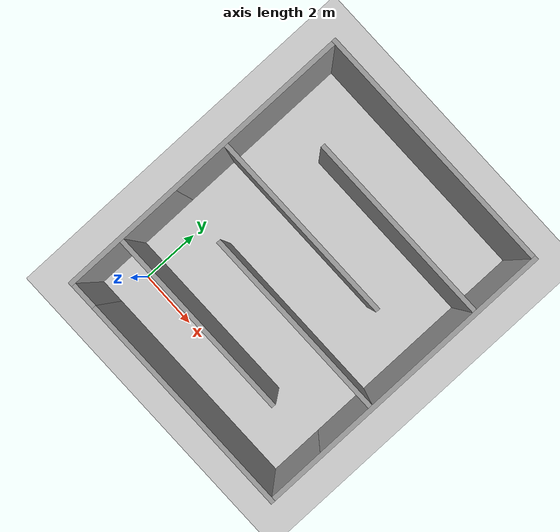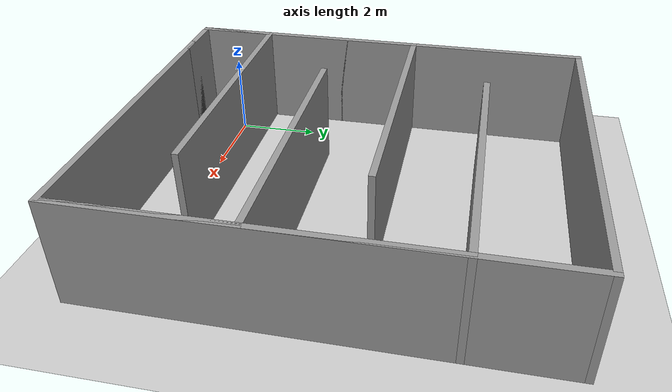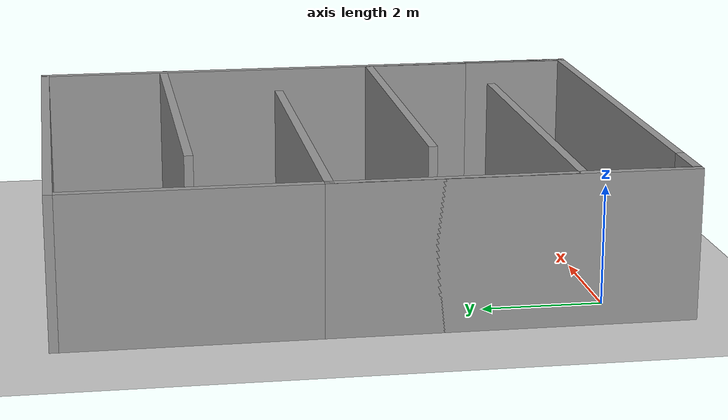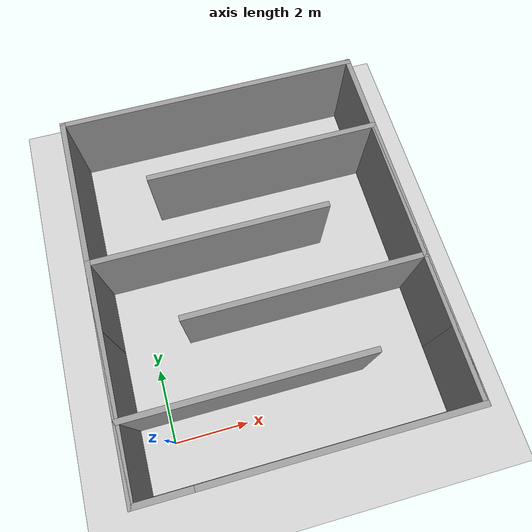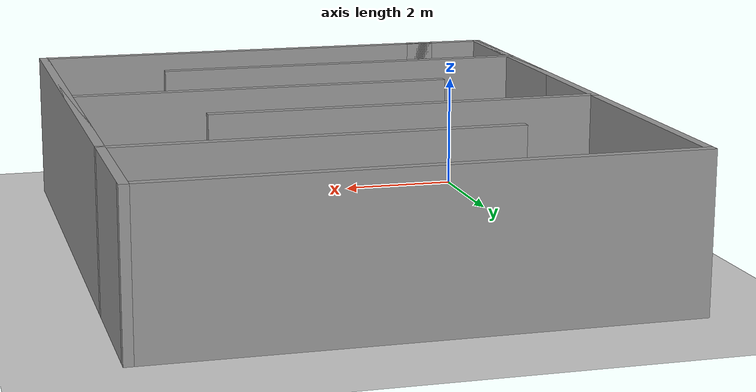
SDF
<sdf version="1.7">
 <world name="default">
  <light name="sun" type="directional">
   <pose>0 0 10 0 -0 0</pose>
   <diffuse>0.8 0.8 0.8 1</diffuse>
   <specular>0.2 0.2 0.2 1</specular>
   <attenuation>
    <range>1000</range>
    <constant>0.9</constant>
    <linear>0.01</linear>
    <quadratic>0.001</quadratic>
   </attenuation>
   <direction>-0.5 0.1 -0.9</direction>
   <spot><inner_angle>0</inner_angle><outer_angle>0</outer_angle><falloff>0</falloff></spot>
  </light>
  <model name="ground_plane">
   <static>1</static>
   <link name="link">
    <collision name="collision">
     <geometry><plane><normal>0 0 1</normal><size>100 100</size></plane></geometry>
     <surface><friction><ode><mu>100</mu><mu2>50</mu2></ode></friction></surface>
    </collision>
    <visual name="visual">
     <cast_shadows>0</cast_shadows>
     <geometry><plane><normal>0 0 1</normal><size>100 100</size></plane></geometry>
     <material>
      <script><uri>file://media/materials/scripts/gazebo.material</uri><name>Gazebo/Grey</name></script>
     </material>
    </visual>
   </link>
  </model>
  <gravity>0 0 -9.8</gravity>
  <magnetic_field>6e-06 2.3e-05 -4.2e-05</magnetic_field>
  <atmosphere type="adiabatic"/>
  <physics type="ode">
   <max_step_size>0.001</max_step_size>
   <real_time_factor>1</real_time_factor>
   <real_time_update_rate>1000</real_time_update_rate>
  </physics>
  <scene><ambient>0.4 0.4 0.4 1</ambient><background>0.7 0.7 0.7 1</background><shadows>1</shadows></scene>
  <spherical_coordinates>
   <surface_model>EARTH_WGS84</surface_model>
   <latitude_deg>0</latitude_deg>
   <longitude_deg>0</longitude_deg>
   <elevation>0</elevation>
   <heading_deg>0</heading_deg>
  </spherical_coordinates>
  <model name="Untitled">
   <pose>3.25393 3.8371 0 0 -0 0</pose>
   <link name="Wall_1">
    <collision name="Wall_1_Collision">
     <geometry><box><size>7.5 0.15 2.5</size></box></geometry>
     <pose>0 0 1.25 0 -0 0</pose>
    </collision>
    <visual name="Wall_1_Visual">
     <pose>0 0 1.25 0 -0 0</pose>
     <geometry><box><size>7.5 0.15 2.5</size></box></geometry>
     <material>
      <script><uri>file://media/materials/scripts/gazebo.material</uri><name>Gazebo/Grey</name></script>
      <ambient>1 1 1 1</ambient>
     </material>
     <meta><layer>0</layer></meta>
    </visual>
    <pose>0.5 -5.05 0 0 -0 0</pose>
   </link>
   <link name="Wall_15">
    <collision name="Wall_15_Collision">
     <geometry><box><size>10.25 0.15 2.5</size></box></geometry>
     <pose>0 0 1.25 0 -0 0</pose>
    </collision>
    <visual name="Wall_15_Visual">
     <pose>0 0 1.25 0 -0 0</pose>
     <geometry><box><size>10.25 0.15 2.5</size></box></geometry>
     <material>
      <script><uri>file://media/materials/scripts/gazebo.material</uri><name>Gazebo/Grey</name></script>
      <ambient>1 1 1 1</ambient>
     </material>
     <meta><layer>0</layer></meta>
    </visual>
    <pose>4.175 -0 0 0 -0 1.5708</pose>
   </link>
   <link name="Wall_16">
    <collision name="Wall_16_Collision">
     <geometry><box><size>8.5 0.15 2.5</size></box></geometry>
     <pose>0 0 1.25 0 -0 0</pose>
    </collision>
    <visual name="Wall_16_Visual">
     <pose>0 0 1.25 0 -0 0</pose>
     <geometry><box><size>8.5 0.15 2.5</size></box></geometry>
     <material>
      <script><uri>file://media/materials/scripts/gazebo.material</uri><name>Gazebo/Grey</name></script>
      <ambient>1 1 1 1</ambient>
     </material>
     <meta><layer>0</layer></meta>
    </visual>
    <pose>0 5.05 0 0 -0 3.14159</pose>
   </link>
   <link name="Wall_17">
    <collision name="Wall_17_Collision">
     <geometry><box><size>10.25 0.15 2.5</size></box></geometry>
     <pose>0 0 1.25 0 -0 0</pose>
    </collision>
    <visual name="Wall_17_Visual">
     <pose>0 0 1.25 0 -0 0</pose>
     <geometry><box><size>10.25 0.15 2.5</size></box></geometry>
     <material>
      <script><uri>file://media/materials/scripts/gazebo.material</uri><name>Gazebo/Grey</name></script>
      <ambient>1 1 1 1</ambient>
     </material>
     <meta><layer>0</layer></meta>
    </visual>
    <pose>-4.175 -0 0 0 -0 -1.5708</pose>
   </link>
   <link name="Wall_18">
    <collision name="Wall_18_Collision">
     <geometry><box><size>1.5 0.15 2.5</size></box></geometry>
     <pose>0 0 1.25 0 -0 0</pose>
    </collision>
    <visual name="Wall_18_Visual">
     <pose>0 0 1.25 0 -0 0</pose>
     <geometry><box><size>1.5 0.15 2.5</size></box></geometry>
     <material>
      <script><uri>file://media/materials/scripts/gazebo.material</uri><name>Gazebo/Grey</name></script>
      <ambient>1 1 1 1</ambient>
     </material>
     <meta><layer>0</layer></meta>
    </visual>
    <pose>-3.5 -5.05 0 0 -0 0</pose>
   </link>
   <link name="Wall_20">
    <collision name="Wall_20_Collision">
     <geometry><box><size>2 0.15 2.5</size></box></geometry>
     <pose>0 0 1.25 0 -0 0</pose>
    </collision>
    <visual name="Wall_20_Visual">
     <pose>0 0 1.25 0 -0 0</pose>
     <geometry><box><size>2 0.15 2.5</size></box></geometry>
     <material>
      <script><uri>file://media/materials/scripts/gazebo.material</uri><name>Gazebo/Grey</name></script>
      <ambient>1 1 1 1</ambient>
     </material>
     <meta><layer>0</layer></meta>
    </visual>
    <pose>4.175 -4.125 0 0 -0 1.5708</pose>
   </link>
   <link name="Wall_22">
    <collision name="Wall_22_Collision">
     <geometry><box><size>2 0.15 2.5</size></box></geometry>
     <pose>0 0 1.25 0 -0 0</pose>
    </collision>
    <visual name="Wall_22_Visual">
     <pose>0 0 1.25 0 -0 0</pose>
     <geometry><box><size>2 0.15 2.5</size></box></geometry>
     <material>
      <script><uri>file://media/materials/scripts/gazebo.material</uri><name>Gazebo/Grey</name></script>
      <ambient>1 1 1 1</ambient>
     </material>
     <meta><layer>0</layer></meta>
    </visual>
    <pose>-4.175 -4.125 0 0 -0 1.5708</pose>
   </link>
   <link name="Wall_23">
    <collision name="Wall_23_Collision">
     <geometry><box><size>6.5 0.15 2.5</size></box></geometry>
     <pose>0 0 1.25 0 -0 0</pose>
    </collision>
    <visual name="Wall_23_Visual">
     <pose>0 0 1.25 0 -0 0</pose>
     <geometry><box><size>6.5 0.15 2.5</size></box></geometry>
     <material>
      <script><uri>file://media/materials/scripts/gazebo.material</uri><name>Gazebo/Grey</name></script>
      <ambient>1 1 1 1</ambient>
     </material>
     <meta><layer>0</layer></meta>
    </visual>
    <pose>-1 -3.2 0 0 -0 0</pose>
   </link>
   <link name="Wall_25">
    <collision name="Wall_25_Collision">
     <geometry><box><size>4 0.15 2.5</size></box></geometry>
     <pose>0 0 1.25 0 -0 0</pose>
    </collision>
    <visual name="Wall_25_Visual">
     <pose>0 0 1.25 0 -0 0</pose>
     <geometry><box><size>4 0.15 2.5</size></box></geometry>
     <material>
      <script><uri>file://media/materials/scripts/gazebo.material</uri><name>Gazebo/Grey</name></script>
      <ambient>1 1 1 1</ambient>
     </material>
     <meta><layer>0</layer></meta>
    </visual>
    <pose>4.175 -3.125 0 0 -0 1.5708</pose>
   </link>
   <link name="Wall_26">
    <collision name="Wall_26_Collision">
     <geometry><box><size>6.5 0.15 2.5</size></box></geometry>
     <pose>0 0 1.25 0 -0 0</pose>
    </collision>
    <visual name="Wall_26_Visual">
     <pose>0 0 1.25 0 -0 0</pose>
     <geometry><box><size>6.5 0.15 2.5</size></box></geometry>
     <material>
      <script><uri>file://media/materials/scripts/gazebo.material</uri><name>Gazebo/Grey</name></script>
      <ambient>1 1 1 1</ambient>
     </material>
     <meta><layer>0</layer></meta>
    </visual>
    <pose>1 -1.2 0 0 -0 3.14159</pose>
   </link>
   <link name="Wall_29">
    <collision name="Wall_29_Collision">
     <geometry><box><size>6 0.15 2.5</size></box></geometry>
     <pose>0 0 1.25 0 -0 0</pose>
    </collision>
    <visual name="Wall_29_Visual">
     <pose>0 0 1.25 0 -0 0</pose>
     <geometry><box><size>6 0.15 2.5</size></box></geometry>
     <material>
      <script><uri>file://media/materials/scripts/gazebo.material</uri><name>Gazebo/Grey</name></script>
      <ambient>1 1 1 1</ambient>
     </material>
     <meta><layer>0</layer></meta>
    </visual>
    <pose>-4.175 -2.125 0 0 -0 1.5708</pose>
   </link>
   <link name="Wall_30">
    <collision name="Wall_30_Collision">
     <geometry><box><size>6.5 0.15 2.5</size></box></geometry>
     <pose>0 0 1.25 0 -0 0</pose>
    </collision>
    <visual name="Wall_30_Visual">
     <pose>0 0 1.25 0 -0 0</pose>
     <geometry><box><size>6.5 0.15 2.5</size></box></geometry>
     <material>
      <script><uri>file://media/materials/scripts/gazebo.material</uri><name>Gazebo/Grey</name></script>
      <ambient>1 1 1 1</ambient>
     </material>
     <meta><layer>0</layer></meta>
    </visual>
    <pose>-1 0.8 0 0 -0 0</pose>
   </link>
   <link name="Wall_33">
    <collision name="Wall_33_Collision">
     <geometry><box><size>8 0.15 2.5</size></box></geometry>
     <pose>0 0 1.25 0 -0 0</pose>
    </collision>
    <visual name="Wall_33_Visual">
     <pose>0 0 1.25 0 -0 0</pose>
     <geometry><box><size>8 0.15 2.5</size></box></geometry>
     <material>
      <script><uri>file://media/materials/scripts/gazebo.material</uri><name>Gazebo/Grey</name></script>
      <ambient>1 1 1 1</ambient>
     </material>
     <meta><layer>0</layer></meta>
    </visual>
    <pose>4.175 -1.125 0 0 -0 1.5708</pose>
   </link>
   <link name="Wall_34">
    <collision name="Wall_34_Collision">
     <geometry><box><size>6.5 0.15 2.5</size></box></geometry>
     <pose>0 0 1.25 0 -0 0</pose>
    </collision>
    <visual name="Wall_34_Visual">
     <pose>0 0 1.25 0 -0 0</pose>
     <geometry><box><size>6.5 0.15 2.5</size></box></geometry>
     <material>
      <script><uri>file://media/materials/scripts/gazebo.material</uri><name>Gazebo/Grey</name></script>
      <ambient>1 1 1 1</ambient>
     </material>
     <meta><layer>0</layer></meta>
    </visual>
    <pose>1 2.8 0 0 -0 3.14159</pose>
   </link>
   <static>1</static>
  </model>
 </world>
</sdf>
